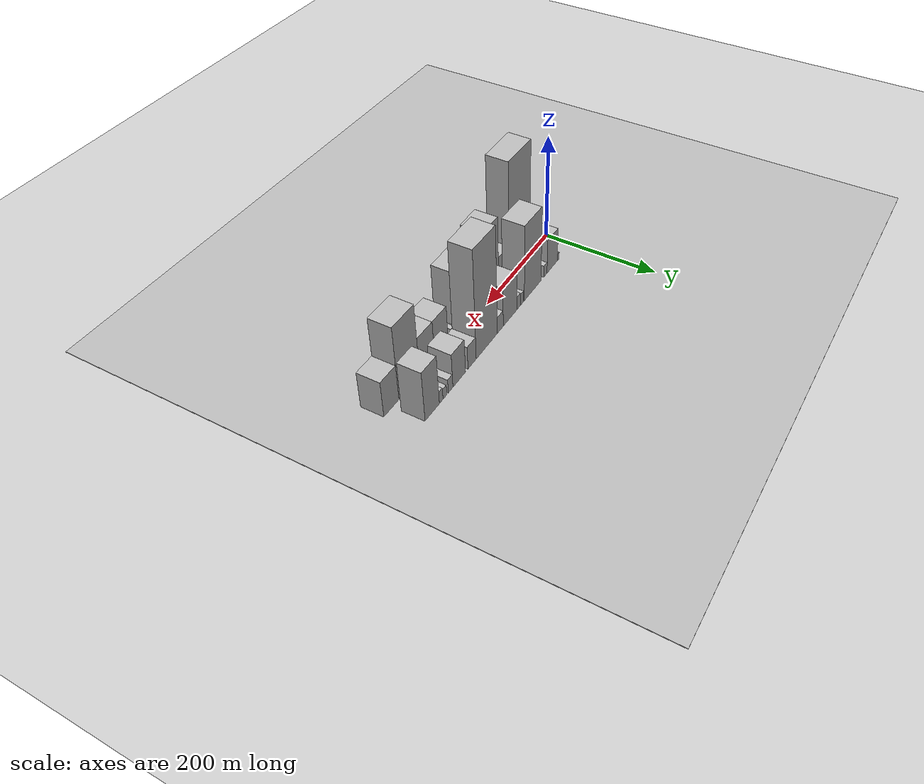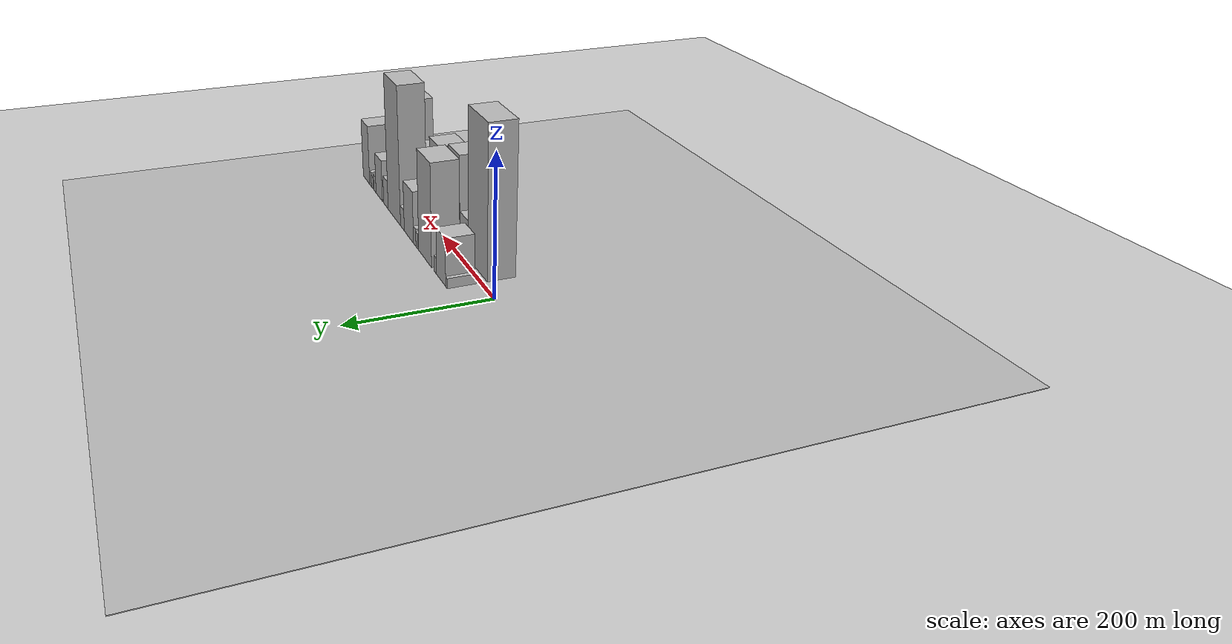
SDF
<?xml version="1.0" encoding="utf-8"?>

<sdf version="1.6">

   <world name="default">

      <gui fullscreen="0">

         <camera name="user_camera">

            <pose>-15 0 4.57585 0 0 0</pose>

            <view_controller>orbit</view_controller>

         </camera>

      </gui>

      <scene>

         <sky>

           <clouds>

             <speed>12</speed>

           </clouds>

         </sky>

         <ambient>0.4 0.4 0.4 1</ambient>

         <background>0.7 0.7 0.7 1</background>

         <shadows>1</shadows>

      </scene>

      <gravity>0 0 -9.8066</gravity>

      <magnetic_field>6e-06 2.3e-05 -4.2e-05</magnetic_field>

      <physics default="0" name="default_physics" type="ode">

         <ode>

            <solver>

               <type>quick</type>

               <iters>10</iters>

               <sor>1.0</sor>

               <use_dynamic_moi_rescaling>0</use_dynamic_moi_rescaling>

            </solver>

            <constraints>

               <cfm>0</cfm>

               <erp>0.2</erp>

               <contact_max_correcting_vel>100</contact_max_correcting_vel>

               <contact_surface_layer>0.001</contact_surface_layer>

            </constraints>

         </ode>

         <max_step_size>0.004</max_step_size>

         <real_time_factor>1</real_time_factor>

         <real_time_update_rate>250</real_time_update_rate>

      </physics>

      <light name="sun" type="directional">

         <cast_shadows>1</cast_shadows>

         <pose>0 0 10 0 0 0</pose>

         <diffuse>0.8 0.8 0.8 1</diffuse>

         <specular>0.2 0.2 0.2 1</specular>

         <attenuation>

            <range>1000</range>

            <constant>0.9</constant>

            <linear>0.01</linear>

            <quadratic>0.001</quadratic>

         </attenuation>

         <direction>-0.5 0.1 -0.9</direction>

      </light>

      <include>

         <name>ground_plane_1</name>

         <uri>model://HANNAS_ground_plane</uri>

         <pose>0 0 0  0 0 0</pose>

      </include>

      <include>

         <name>ground_plane_2</name>

         <uri>model://HANNAS_ground_plane</uri>

         <pose>100 0 0  0 0 0</pose>

      </include>

      <model name="building_1">

         <static>1</static>

         <pose frame="">49.1880 27.5000 0 0.000000 0.000000 1.570796</pose>

         <link name="link">

            <pose frame="">0 0 7.50 0 0 0</pose>

            <collision name="collision">

               <geometry>

                  <box>

                     <size>40.0000 6.3760 15.0000</size>

                  </box>

               </geometry>

               <max_contacts>10</max_contacts>

               <surface>

                  <contact>

                     <ode/>

                  </contact>

                  <bounce/>

                  <friction>

                     <torsional>

                        <ode/>

                     </torsional>

                     <ode/>

                  </friction>

               </surface>

            </collision>

            <visual name="visual">

               <cast_shadows>0</cast_shadows>

               <geometry>

                  <box>

                     <size>40.0000 6.3760 15.0000</size>

                  </box>

               </geometry>

               <material>

                  <script>

                     <uri>model://HANNAS_wall/materials/scripts</uri>

                     <uri>model://HANNAS_wall/materials/textures</uri>

                     <name>vrc/HANNAS_wall</name>

                  </script>

               </material>

            </visual>

            <self_collide>0</self_collide>

            <enable_wind>0</enable_wind>

            <kinematic>0</kinematic>

         </link>

      </model>

      <model name="building_2">

         <static>1</static>

         <pose frame="">70.7179 27.5000 0 0.000000 0.000000 1.570796</pose>

         <link name="link">

            <pose frame="">0 0 34.50 0 0 0</pose>

            <collision name="collision">

               <geometry>

                  <box>

                     <size>40.0000 36.6837 69.0000</size>

                  </box>

               </geometry>

               <max_contacts>10</max_contacts>

               <surface>

                  <contact>

                     <ode/>

                  </contact>

                  <bounce/>

                  <friction>

                     <torsional>

                        <ode/>

                     </torsional>

                     <ode/>

                  </friction>

               </surface>

            </collision>

            <visual name="visual">

               <cast_shadows>0</cast_shadows>

               <geometry>

                  <box>

                     <size>40.0000 36.6837 69.0000</size>

                  </box>

               </geometry>

               <material>

                  <script>

                     <uri>model://HANNAS_wall/materials/scripts</uri>

                     <uri>model://HANNAS_wall/materials/textures</uri>

                     <name>vrc/HANNAS_wall</name>

                  </script>

               </material>

            </visual>

            <self_collide>0</self_collide>

            <enable_wind>0</enable_wind>

            <kinematic>0</kinematic>

         </link>

      </model>

      <model name="building_3">

         <static>1</static>

         <pose frame="">94.4982 27.5000 0 0.000000 0.000000 1.570796</pose>

         <link name="link">

            <pose frame="">0 0 12.00 0 0 0</pose>

            <collision name="collision">

               <geometry>

                  <box>

                     <size>40.0000 10.8769 24.0000</size>

                  </box>

               </geometry>

               <max_contacts>10</max_contacts>

               <surface>

                  <contact>

                     <ode/>

                  </contact>

                  <bounce/>

                  <friction>

                     <torsional>

                        <ode/>

                     </torsional>

                     <ode/>

                  </friction>

               </surface>

            </collision>

            <visual name="visual">

               <cast_shadows>0</cast_shadows>

               <geometry>

                  <box>

                     <size>40.0000 10.8769 24.0000</size>

                  </box>

               </geometry>

               <material>

                  <script>

                     <uri>model://HANNAS_wall/materials/scripts</uri>

                     <uri>model://HANNAS_wall/materials/textures</uri>

                     <name>vrc/HANNAS_wall</name>

                  </script>

               </material>

            </visual>

            <self_collide>0</self_collide>

            <enable_wind>0</enable_wind>

            <kinematic>0</kinematic>

         </link>

      </model>

      <model name="building_4">

         <static>1</static>

         <pose frame="">137.9795 27.5000 0 0.000000 0.000000 1.570796</pose>

         <link name="link">

            <pose frame="">0 0 75.00 0 0 0</pose>

            <collision name="collision">

               <geometry>

                  <box>

                     <size>40.0000 56.0856 150.0000</size>

                  </box>

               </geometry>

               <max_contacts>10</max_contacts>

               <surface>

                  <contact>

                     <ode/>

                  </contact>

                  <bounce/>

                  <friction>

                     <torsional>

                        <ode/>

                     </torsional>

                     <ode/>

                  </friction>

               </surface>

            </collision>

            <visual name="visual">

               <cast_shadows>0</cast_shadows>

               <geometry>

                  <box>

                     <size>40.0000 56.0856 150.0000</size>

                  </box>

               </geometry>

               <material>

                  <script>

                     <uri>model://HANNAS_wall/materials/scripts</uri>

                     <uri>model://HANNAS_wall/materials/textures</uri>

                     <name>vrc/HANNAS_wall</name>

                  </script>

               </material>

            </visual>

            <self_collide>0</self_collide>

            <enable_wind>0</enable_wind>

            <kinematic>0</kinematic>

         </link>

      </model>

      <model name="building_5">

         <static>1</static>

         <pose frame="">173.9048 27.5000 0 0.000000 0.000000 1.570796</pose>

         <link name="link">

            <pose frame="">0 0 12.00 0 0 0</pose>

            <collision name="collision">

               <geometry>

                  <box>

                     <size>40.0000 9.7650 24.0000</size>

                  </box>

               </geometry>

               <max_contacts>10</max_contacts>

               <surface>

                  <contact>

                     <ode/>

                  </contact>

                  <bounce/>

                  <friction>

                     <torsional>

                        <ode/>

                     </torsional>

                     <ode/>

                  </friction>

               </surface>

            </collision>

            <visual name="visual">

               <cast_shadows>0</cast_shadows>

               <geometry>

                  <box>

                     <size>40.0000 9.7650 24.0000</size>

                  </box>

               </geometry>

               <material>

                  <script>

                     <uri>model://HANNAS_wall/materials/scripts</uri>

                     <uri>model://HANNAS_wall/materials/textures</uri>

                     <name>vrc/HANNAS_wall</name>

                  </script>

               </material>

            </visual>

            <self_collide>0</self_collide>

            <enable_wind>0</enable_wind>

            <kinematic>0</kinematic>

         </link>

      </model>

      <model name="building_6">

         <static>1</static>

         <pose frame="">184.4624 27.5000 0 0.000000 0.000000 1.570796</pose>

         <link name="link">

            <pose frame="">0 0 13.50 0 0 0</pose>

            <collision name="collision">

               <geometry>

                  <box>

                     <size>40.0000 11.3502 27.0000</size>

                  </box>

               </geometry>

               <max_contacts>10</max_contacts>

               <surface>

                  <contact>

                     <ode/>

                  </contact>

                  <bounce/>

                  <friction>

                     <torsional>

                        <ode/>

                     </torsional>

                     <ode/>

                  </friction>

               </surface>

            </collision>

            <visual name="visual">

               <cast_shadows>0</cast_shadows>

               <geometry>

                  <box>

                     <size>40.0000 11.3502 27.0000</size>

                  </box>

               </geometry>

               <material>

                  <script>

                     <uri>model://HANNAS_wall/materials/scripts</uri>

                     <uri>model://HANNAS_wall/materials/textures</uri>

                     <name>vrc/HANNAS_wall</name>

                  </script>

               </material>

            </visual>

            <self_collide>0</self_collide>

            <enable_wind>0</enable_wind>

            <kinematic>0</kinematic>

         </link>

      </model>

      <model name="building_7">

         <static>1</static>

         <pose frame="">211.8677 27.5000 0 0.000000 0.000000 1.570796</pose>

         <link name="link">

            <pose frame="">0 0 39.00 0 0 0</pose>

            <collision name="collision">

               <geometry>

                  <box>

                     <size>40.0000 43.4605 78.0000</size>

                  </box>

               </geometry>

               <max_contacts>10</max_contacts>

               <surface>

                  <contact>

                     <ode/>

                  </contact>

                  <bounce/>

                  <friction>

                     <torsional>

                        <ode/>

                     </torsional>

                     <ode/>

                  </friction>

               </surface>

            </collision>

            <visual name="visual">

               <cast_shadows>0</cast_shadows>

               <geometry>

                  <box>

                     <size>40.0000 43.4605 78.0000</size>

                  </box>

               </geometry>

               <material>

                  <script>

                     <uri>model://HANNAS_wall/materials/scripts</uri>

                     <uri>model://HANNAS_wall/materials/textures</uri>

                     <name>vrc/HANNAS_wall</name>

                  </script>

               </material>

            </visual>

            <self_collide>0</self_collide>

            <enable_wind>0</enable_wind>

            <kinematic>0</kinematic>

         </link>

      </model>

      <model name="building_8">

         <static>1</static>

         <pose frame="">242.7476 27.5000 0 0.000000 0.000000 1.570796</pose>

         <link name="link">

            <pose frame="">0 0 16.50 0 0 0</pose>

            <collision name="collision">

               <geometry>

                  <box>

                     <size>40.0000 18.2993 33.0000</size>

                  </box>

               </geometry>

               <max_contacts>10</max_contacts>

               <surface>

                  <contact>

                     <ode/>

                  </contact>

                  <bounce/>

                  <friction>

                     <torsional>

                        <ode/>

                     </torsional>

                     <ode/>

                  </friction>

               </surface>

            </collision>

            <visual name="visual">

               <cast_shadows>0</cast_shadows>

               <geometry>

                  <box>

                     <size>40.0000 18.2993 33.0000</size>

                  </box>

               </geometry>

               <material>

                  <script>

                     <uri>model://HANNAS_wall/materials/scripts</uri>

                     <uri>model://HANNAS_wall/materials/textures</uri>

                     <name>vrc/HANNAS_wall</name>

                  </script>

               </material>

            </visual>

            <self_collide>0</self_collide>

            <enable_wind>0</enable_wind>

            <kinematic>0</kinematic>

         </link>

      </model>

      <model name="building_9">

         <static>1</static>

         <pose frame="">283.5393 27.5000 0 0.000000 0.000000 1.570796</pose>

         <link name="link">

            <pose frame="">0 0 105.00 0 0 0</pose>

            <collision name="collision">

               <geometry>

                  <box>

                     <size>40.0000 63.2841 210.0000</size>

                  </box>

               </geometry>

               <max_contacts>10</max_contacts>

               <surface>

                  <contact>

                     <ode/>

                  </contact>

                  <bounce/>

                  <friction>

                     <torsional>

                        <ode/>

                     </torsional>

                     <ode/>

                  </friction>

               </surface>

            </collision>

            <visual name="visual">

               <cast_shadows>0</cast_shadows>

               <geometry>

                  <box>

                     <size>40.0000 63.2841 210.0000</size>

                  </box>

               </geometry>

               <material>

                  <script>

                     <uri>model://HANNAS_wall/materials/scripts</uri>

                     <uri>model://HANNAS_wall/materials/textures</uri>

                     <name>vrc/HANNAS_wall</name>

                  </script>

               </material>

            </visual>

            <self_collide>0</self_collide>

            <enable_wind>0</enable_wind>

            <kinematic>0</kinematic>

         </link>

      </model>

      <model name="building_10">

         <static>1</static>

         <pose frame="">326.9958 27.5000 0 0.000000 0.000000 1.570796</pose>

         <link name="link">

            <pose frame="">0 0 22.50 0 0 0</pose>

            <collision name="collision">

               <geometry>

                  <box>

                     <size>40.0000 23.6289 45.0000</size>

                  </box>

               </geometry>

               <max_contacts>10</max_contacts>

               <surface>

                  <contact>

                     <ode/>

                  </contact>

                  <bounce/>

                  <friction>

                     <torsional>

                        <ode/>

                     </torsional>

                     <ode/>

                  </friction>

               </surface>

            </collision>

            <visual name="visual">

               <cast_shadows>0</cast_shadows>

               <geometry>

                  <box>

                     <size>40.0000 23.6289 45.0000</size>

                  </box>

               </geometry>

               <material>

                  <script>

                     <uri>model://HANNAS_wall/materials/scripts</uri>

                     <uri>model://HANNAS_wall/materials/textures</uri>

                     <name>vrc/HANNAS_wall</name>

                  </script>

               </material>

            </visual>

            <self_collide>0</self_collide>

            <enable_wind>0</enable_wind>

            <kinematic>0</kinematic>

         </link>

      </model>

      <model name="building_11">

         <static>1</static>

         <pose frame="">363.4065 27.5000 0 0.000000 0.000000 1.570796</pose>

         <link name="link">

            <pose frame="">0 0 33.00 0 0 0</pose>

            <collision name="collision">

               <geometry>

                  <box>

                     <size>40.0000 35.1926 66.0000</size>

                  </box>

               </geometry>

               <max_contacts>10</max_contacts>

               <surface>

                  <contact>

                     <ode/>

                  </contact>

                  <bounce/>

                  <friction>

                     <torsional>

                        <ode/>

                     </torsional>

                     <ode/>

                  </friction>

               </surface>

            </collision>

            <visual name="visual">

               <cast_shadows>0</cast_shadows>

               <geometry>

                  <box>

                     <size>40.0000 35.1926 66.0000</size>

                  </box>

               </geometry>

               <material>

                  <script>

                     <uri>model://HANNAS_wall/materials/scripts</uri>

                     <uri>model://HANNAS_wall/materials/textures</uri>

                     <name>vrc/HANNAS_wall</name>

                  </script>

               </material>

            </visual>

            <self_collide>0</self_collide>

            <enable_wind>0</enable_wind>

            <kinematic>0</kinematic>

         </link>

      </model>

      <model name="building_12">

         <static>1</static>

         <pose frame="">387.3186 27.5000 0 0.000000 0.000000 1.570796</pose>

         <link name="link">

            <pose frame="">0 0 13.50 0 0 0</pose>

            <collision name="collision">

               <geometry>

                  <box>

                     <size>40.0000 12.6315 27.0000</size>

                  </box>

               </geometry>

               <max_contacts>10</max_contacts>

               <surface>

                  <contact>

                     <ode/>

                  </contact>

                  <bounce/>

                  <friction>

                     <torsional>

                        <ode/>

                     </torsional>

                     <ode/>

                  </friction>

               </surface>

            </collision>

            <visual name="visual">

               <cast_shadows>0</cast_shadows>

               <geometry>

                  <box>

                     <size>40.0000 12.6315 27.0000</size>

                  </box>

               </geometry>

               <material>

                  <script>

                     <uri>model://HANNAS_wall/materials/scripts</uri>

                     <uri>model://HANNAS_wall/materials/textures</uri>

                     <name>vrc/HANNAS_wall</name>

                  </script>

               </material>

            </visual>

            <self_collide>0</self_collide>

            <enable_wind>0</enable_wind>

            <kinematic>0</kinematic>

         </link>

      </model>

      <model name="building_13">

         <static>1</static>

         <pose frame="">402.7633 27.5000 0 0.000000 0.000000 1.570796</pose>

         <link name="link">

            <pose frame="">0 0 10.50 0 0 0</pose>

            <collision name="collision">

               <geometry>

                  <box>

                     <size>40.0000 10.2580 21.0000</size>

                  </box>

               </geometry>

               <max_contacts>10</max_contacts>

               <surface>

                  <contact>

                     <ode/>

                  </contact>

                  <bounce/>

                  <friction>

                     <torsional>

                        <ode/>

                     </torsional>

                     <ode/>

                  </friction>

               </surface>

            </collision>

            <visual name="visual">

               <cast_shadows>0</cast_shadows>

               <geometry>

                  <box>

                     <size>40.0000 10.2580 21.0000</size>

                  </box>

               </geometry>

               <material>

                  <script>

                     <uri>model://HANNAS_wall/materials/scripts</uri>

                     <uri>model://HANNAS_wall/materials/textures</uri>

                     <name>vrc/HANNAS_wall</name>

                  </script>

               </material>

            </visual>

            <self_collide>0</self_collide>

            <enable_wind>0</enable_wind>

            <kinematic>0</kinematic>

         </link>

      </model>

      <model name="building_14">

         <static>1</static>

         <pose frame="">412.7089 27.5000 0 0.000000 0.000000 1.570796</pose>

         <link name="link">

            <pose frame="">0 0 12.00 0 0 0</pose>

            <collision name="collision">

               <geometry>

                  <box>

                     <size>40.0000 9.6331 24.0000</size>

                  </box>

               </geometry>

               <max_contacts>10</max_contacts>

               <surface>

                  <contact>

                     <ode/>

                  </contact>

                  <bounce/>

                  <friction>

                     <torsional>

                        <ode/>

                     </torsional>

                     <ode/>

                  </friction>

               </surface>

            </collision>

            <visual name="visual">

               <cast_shadows>0</cast_shadows>

               <geometry>

                  <box>

                     <size>40.0000 9.6331 24.0000</size>

                  </box>

               </geometry>

               <material>

                  <script>

                     <uri>model://HANNAS_wall/materials/scripts</uri>

                     <uri>model://HANNAS_wall/materials/textures</uri>

                     <name>vrc/HANNAS_wall</name>

                  </script>

               </material>

            </visual>

            <self_collide>0</self_collide>

            <enable_wind>0</enable_wind>

            <kinematic>0</kinematic>

         </link>

      </model>

      <model name="building_15">

         <static>1</static>

         <pose frame="">436.3256 27.5000 0 0.000000 0.000000 1.570796</pose>

         <link name="link">

            <pose frame="">0 0 48.00 0 0 0</pose>

            <collision name="collision">

               <geometry>

                  <box>

                     <size>40.0000 37.6004 96.0000</size>

                  </box>

               </geometry>

               <max_contacts>10</max_contacts>

               <surface>

                  <contact>

                     <ode/>

                  </contact>

                  <bounce/>

                  <friction>

                     <torsional>

                        <ode/>

                     </torsional>

                     <ode/>

                  </friction>

               </surface>

            </collision>

            <visual name="visual">

               <cast_shadows>0</cast_shadows>

               <geometry>

                  <box>

                     <size>40.0000 37.6004 96.0000</size>

                  </box>

               </geometry>

               <material>

                  <script>

                     <uri>model://HANNAS_wall/materials/scripts</uri>

                     <uri>model://HANNAS_wall/materials/textures</uri>

                     <name>vrc/HANNAS_wall</name>

                  </script>

               </material>

            </visual>

            <self_collide>0</self_collide>

            <enable_wind>0</enable_wind>

            <kinematic>0</kinematic>

         </link>

      </model>

      <model name="building_16">

         <static>1</static>

         <pose frame="">81.8633 -27.5000 0 0.000000 0.000000 1.570796</pose>

         <link name="link">

            <pose frame="">0 0 109.50 0 0 0</pose>

            <collision name="collision">

               <geometry>

                  <box>

                     <size>40.0000 71.7267 219.0000</size>

                  </box>

               </geometry>

               <max_contacts>10</max_contacts>

               <surface>

                  <contact>

                     <ode/>

                  </contact>

                  <bounce/>

                  <friction>

                     <torsional>

                        <ode/>

                     </torsional>

                     <ode/>

                  </friction>

               </surface>

            </collision>

            <visual name="visual">

               <cast_shadows>0</cast_shadows>

               <geometry>

                  <box>

                     <size>40.0000 71.7267 219.0000</size>

                  </box>

               </geometry>

               <material>

                  <script>

                     <uri>model://HANNAS_wall/materials/scripts</uri>

                     <uri>model://HANNAS_wall/materials/textures</uri>

                     <name>vrc/HANNAS_wall</name>

                  </script>

               </material>

            </visual>

            <self_collide>0</self_collide>

            <enable_wind>0</enable_wind>

            <kinematic>0</kinematic>

         </link>

      </model>

      <model name="building_17">

         <static>1</static>

         <pose frame="">134.7745 -27.5000 0 0.000000 0.000000 1.570796</pose>

         <link name="link">

            <pose frame="">0 0 28.50 0 0 0</pose>

            <collision name="collision">

               <geometry>

                  <box>

                     <size>40.0000 34.0956 57.0000</size>

                  </box>

               </geometry>

               <max_contacts>10</max_contacts>

               <surface>

                  <contact>

                     <ode/>

                  </contact>

                  <bounce/>

                  <friction>

                     <torsional>

                        <ode/>

                     </torsional>

                     <ode/>

                  </friction>

               </surface>

            </collision>

            <visual name="visual">

               <cast_shadows>0</cast_shadows>

               <geometry>

                  <box>

                     <size>40.0000 34.0956 57.0000</size>

                  </box>

               </geometry>

               <material>

                  <script>

                     <uri>model://HANNAS_wall/materials/scripts</uri>

                     <uri>model://HANNAS_wall/materials/textures</uri>

                     <name>vrc/HANNAS_wall</name>

                  </script>

               </material>

            </visual>

            <self_collide>0</self_collide>

            <enable_wind>0</enable_wind>

            <kinematic>0</kinematic>

         </link>

      </model>

      <model name="building_18">

         <static>1</static>

         <pose frame="">174.4145 -27.5000 0 0.000000 0.000000 1.570796</pose>

         <link name="link">

            <pose frame="">0 0 69.00 0 0 0</pose>

            <collision name="collision">

               <geometry>

                  <box>

                     <size>40.0000 45.1845 138.0000</size>

                  </box>

               </geometry>

               <max_contacts>10</max_contacts>

               <surface>

                  <contact>

                     <ode/>

                  </contact>

                  <bounce/>

                  <friction>

                     <torsional>

                        <ode/>

                     </torsional>

                     <ode/>

                  </friction>

               </surface>

            </collision>

            <visual name="visual">

               <cast_shadows>0</cast_shadows>

               <geometry>

                  <box>

                     <size>40.0000 45.1845 138.0000</size>

                  </box>

               </geometry>

               <material>

                  <script>

                     <uri>model://HANNAS_wall/materials/scripts</uri>

                     <uri>model://HANNAS_wall/materials/textures</uri>

                     <name>vrc/HANNAS_wall</name>

                  </script>

               </material>

            </visual>

            <self_collide>0</self_collide>

            <enable_wind>0</enable_wind>

            <kinematic>0</kinematic>

         </link>

      </model>

      <model name="building_19">

         <static>1</static>

         <pose frame="">216.2079 -27.5000 0 0.000000 0.000000 1.570796</pose>

         <link name="link">

            <pose frame="">0 0 37.50 0 0 0</pose>

            <collision name="collision">

               <geometry>

                  <box>

                     <size>40.0000 38.4022 75.0000</size>

                  </box>

               </geometry>

               <max_contacts>10</max_contacts>

               <surface>

                  <contact>

                     <ode/>

                  </contact>

                  <bounce/>

                  <friction>

                     <torsional>

                        <ode/>

                     </torsional>

                     <ode/>

                  </friction>

               </surface>

            </collision>

            <visual name="visual">

               <cast_shadows>0</cast_shadows>

               <geometry>

                  <box>

                     <size>40.0000 38.4022 75.0000</size>

                  </box>

               </geometry>

               <material>

                  <script>

                     <uri>model://HANNAS_wall/materials/scripts</uri>

                     <uri>model://HANNAS_wall/materials/textures</uri>

                     <name>vrc/HANNAS_wall</name>

                  </script>

               </material>

            </visual>

            <self_collide>0</self_collide>

            <enable_wind>0</enable_wind>

            <kinematic>0</kinematic>

         </link>

      </model>

      <model name="building_20">

         <static>1</static>

         <pose frame="">258.1465 -27.5000 0 0.000000 0.000000 1.570796</pose>

         <link name="link">

            <pose frame="">0 0 60.00 0 0 0</pose>

            <collision name="collision">

               <geometry>

                  <box>

                     <size>40.0000 45.4749 120.0000</size>

                  </box>

               </geometry>

               <max_contacts>10</max_contacts>

               <surface>

                  <contact>

                     <ode/>

                  </contact>

                  <bounce/>

                  <friction>

                     <torsional>

                        <ode/>

                     </torsional>

                     <ode/>

                  </friction>

               </surface>

            </collision>

            <visual name="visual">

               <cast_shadows>0</cast_shadows>

               <geometry>

                  <box>

                     <size>40.0000 45.4749 120.0000</size>

                  </box>

               </geometry>

               <material>

                  <script>

                     <uri>model://HANNAS_wall/materials/scripts</uri>

                     <uri>model://HANNAS_wall/materials/textures</uri>

                     <name>vrc/HANNAS_wall</name>

                  </script>

               </material>

            </visual>

            <self_collide>0</self_collide>

            <enable_wind>0</enable_wind>

            <kinematic>0</kinematic>

         </link>

      </model>

      <model name="building_21">

         <static>1</static>

         <pose frame="">284.1670 -27.5000 0 0.000000 0.000000 1.570796</pose>

         <link name="link">

            <pose frame="">0 0 7.50 0 0 0</pose>

            <collision name="collision">

               <geometry>

                  <box>

                     <size>40.0000 6.5662 15.0000</size>

                  </box>

               </geometry>

               <max_contacts>10</max_contacts>

               <surface>

                  <contact>

                     <ode/>

                  </contact>

                  <bounce/>

                  <friction>

                     <torsional>

                        <ode/>

                     </torsional>

                     <ode/>

                  </friction>

               </surface>

            </collision>

            <visual name="visual">

               <cast_shadows>0</cast_shadows>

               <geometry>

                  <box>

                     <size>40.0000 6.5662 15.0000</size>

                  </box>

               </geometry>

               <material>

                  <script>

                     <uri>model://HANNAS_wall/materials/scripts</uri>

                     <uri>model://HANNAS_wall/materials/textures</uri>

                     <name>vrc/HANNAS_wall</name>

                  </script>

               </material>

            </visual>

            <self_collide>0</self_collide>

            <enable_wind>0</enable_wind>

            <kinematic>0</kinematic>

         </link>

      </model>

      <model name="building_22">

         <static>1</static>

         <pose frame="">291.9953 -27.5000 0 0.000000 0.000000 1.570796</pose>

         <link name="link">

            <pose frame="">0 0 10.50 0 0 0</pose>

            <collision name="collision">

               <geometry>

                  <box>

                     <size>40.0000 9.0904 21.0000</size>

                  </box>

               </geometry>

               <max_contacts>10</max_contacts>

               <surface>

                  <contact>

                     <ode/>

                  </contact>

                  <bounce/>

                  <friction>

                     <torsional>

                        <ode/>

                     </torsional>

                     <ode/>

                  </friction>

               </surface>

            </collision>

            <visual name="visual">

               <cast_shadows>0</cast_shadows>

               <geometry>

                  <box>

                     <size>40.0000 9.0904 21.0000</size>

                  </box>

               </geometry>

               <material>

                  <script>

                     <uri>model://HANNAS_wall/materials/scripts</uri>

                     <uri>model://HANNAS_wall/materials/textures</uri>

                     <name>vrc/HANNAS_wall</name>

                  </script>

               </material>

            </visual>

            <self_collide>0</self_collide>

            <enable_wind>0</enable_wind>

            <kinematic>0</kinematic>

         </link>

      </model>

      <model name="building_23">

         <static>1</static>

         <pose frame="">324.7056 -27.5000 0 0.000000 0.000000 1.570796</pose>

         <link name="link">

            <pose frame="">0 0 37.50 0 0 0</pose>

            <collision name="collision">

               <geometry>

                  <box>

                     <size>40.0000 38.3304 75.0000</size>

                  </box>

               </geometry>

               <max_contacts>10</max_contacts>

               <surface>

                  <contact>

                     <ode/>

                  </contact>

                  <bounce/>

                  <friction>

                     <torsional>

                        <ode/>

                     </torsional>

                     <ode/>

                  </friction>

               </surface>

            </collision>

            <visual name="visual">

               <cast_shadows>0</cast_shadows>

               <geometry>

                  <box>

                     <size>40.0000 38.3304 75.0000</size>

                  </box>

               </geometry>

               <material>

                  <script>

                     <uri>model://HANNAS_wall/materials/scripts</uri>

                     <uri>model://HANNAS_wall/materials/textures</uri>

                     <name>vrc/HANNAS_wall</name>

                  </script>

               </material>

            </visual>

            <self_collide>0</self_collide>

            <enable_wind>0</enable_wind>

            <kinematic>0</kinematic>

         </link>

      </model>

      <model name="building_24">

         <static>1</static>

         <pose frame="">364.1659 -27.5000 0 0.000000 0.000000 1.570796</pose>

         <link name="link">

            <pose frame="">0 0 37.50 0 0 0</pose>

            <collision name="collision">

               <geometry>

                  <box>

                     <size>40.0000 40.5902 75.0000</size>

                  </box>

               </geometry>

               <max_contacts>10</max_contacts>

               <surface>

                  <contact>

                     <ode/>

                  </contact>

                  <bounce/>

                  <friction>

                     <torsional>

                        <ode/>

                     </torsional>

                     <ode/>

                  </friction>

               </surface>

            </collision>

            <visual name="visual">

               <cast_shadows>0</cast_shadows>

               <geometry>

                  <box>

                     <size>40.0000 40.5902 75.0000</size>

                  </box>

               </geometry>

               <material>

                  <script>

                     <uri>model://HANNAS_wall/materials/scripts</uri>

                     <uri>model://HANNAS_wall/materials/textures</uri>

                     <name>vrc/HANNAS_wall</name>

                  </script>

               </material>

            </visual>

            <self_collide>0</self_collide>

            <enable_wind>0</enable_wind>

            <kinematic>0</kinematic>

         </link>

      </model>

      <model name="building_25">

         <static>1</static>

         <pose frame="">411.5635 -27.5000 0 0.000000 0.000000 1.570796</pose>

         <link name="link">

            <pose frame="">0 0 70.50 0 0 0</pose>

            <collision name="collision">

               <geometry>

                  <box>

                     <size>40.0000 54.2051 141.0000</size>

                  </box>

               </geometry>

               <max_contacts>10</max_contacts>

               <surface>

                  <contact>

                     <ode/>

                  </contact>

                  <bounce/>

                  <friction>

                     <torsional>

                        <ode/>

                     </torsional>

                     <ode/>

                  </friction>

               </surface>

            </collision>

            <visual name="visual">

               <cast_shadows>0</cast_shadows>

               <geometry>

                  <box>

                     <size>40.0000 54.2051 141.0000</size>

                  </box>

               </geometry>

               <material>

                  <script>

                     <uri>model://HANNAS_wall/materials/scripts</uri>

                     <uri>model://HANNAS_wall/materials/textures</uri>

                     <name>vrc/HANNAS_wall</name>

                  </script>

               </material>

            </visual>

            <self_collide>0</self_collide>

            <enable_wind>0</enable_wind>

            <kinematic>0</kinematic>

         </link>

      </model>

      <model name="building_26">

         <static>1</static>

         <pose frame="">457.5677 -27.5000 0 0.000000 0.000000 1.570796</pose>

         <link name="link">

            <pose frame="">0 0 34.50 0 0 0</pose>

            <collision name="collision">

               <geometry>

                  <box>

                     <size>40.0000 37.8032 69.0000</size>

                  </box>

               </geometry>

               <max_contacts>10</max_contacts>

               <surface>

                  <contact>

                     <ode/>

                  </contact>

                  <bounce/>

                  <friction>

                     <torsional>

                        <ode/>

                     </torsional>

                     <ode/>

                  </friction>

               </surface>

            </collision>

            <visual name="visual">

               <cast_shadows>0</cast_shadows>

               <geometry>

                  <box>

                     <size>40.0000 37.8032 69.0000</size>

                  </box>

               </geometry>

               <material>

                  <script>

                     <uri>model://HANNAS_wall/materials/scripts</uri>

                     <uri>model://HANNAS_wall/materials/textures</uri>

                     <name>vrc/HANNAS_wall</name>

                  </script>

               </material>

            </visual>

            <self_collide>0</self_collide>

            <enable_wind>0</enable_wind>

            <kinematic>0</kinematic>

         </link>

      </model>

   </world>

</sdf>

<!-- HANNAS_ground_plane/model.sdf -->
<sdf version="1.4">
<model name="HANNAS_ground_plane">
  <static>true</static>
    <link name="link">
      <collision name="collision">
        <geometry>
          <plane>
            <normal>0 0 1</normal>
            <size>1000 1000</size>
          </plane>
        </geometry>
        <surface>
          <friction>
            <ode>
              <mu>100</mu>
              <mu2>50</mu2>
            </ode>
          </friction>
        </surface>
      </collision>
      <visual name="visual">
        <cast_shadows>false</cast_shadows>
        <geometry>
          <plane>
            <normal>0 0 1</normal>
            <size>1000 1000</size>
          </plane>
        </geometry>
        <material>
          <script>
            <uri>model://HANNAS_ground_plane/materials/scripts/HANNAS_ground_plane.material</uri>
	    <uri>model://HANNAS_ground_plane/materials/textures</uri>
            <name>HANNASGroundPlane/Image</name>
          </script>
        </material>
      </visual>
    </link>
  </model>
</sdf>
